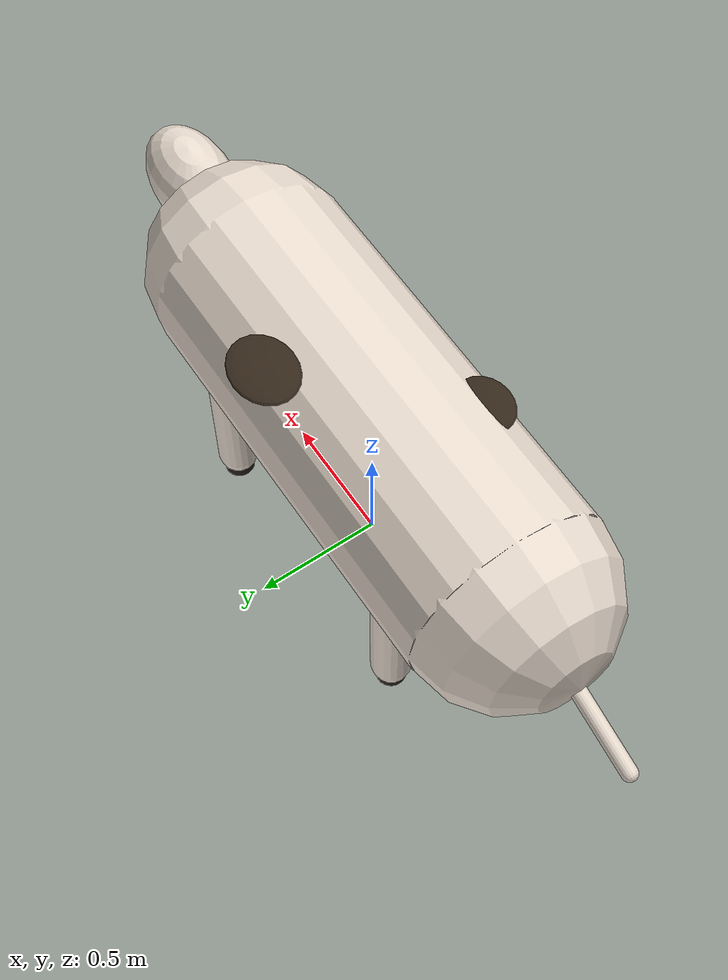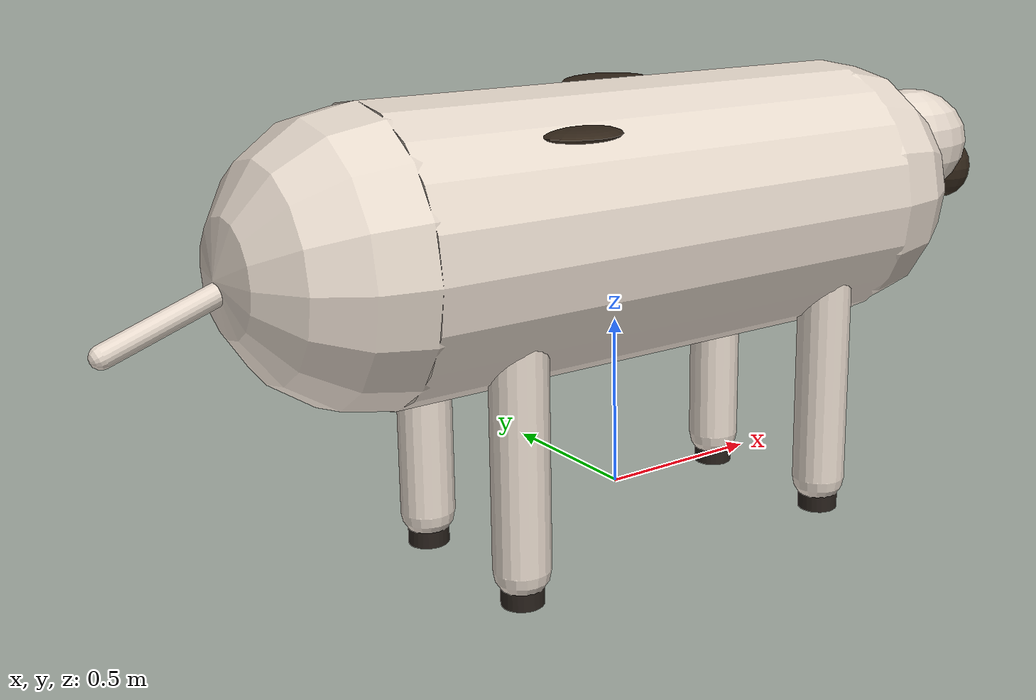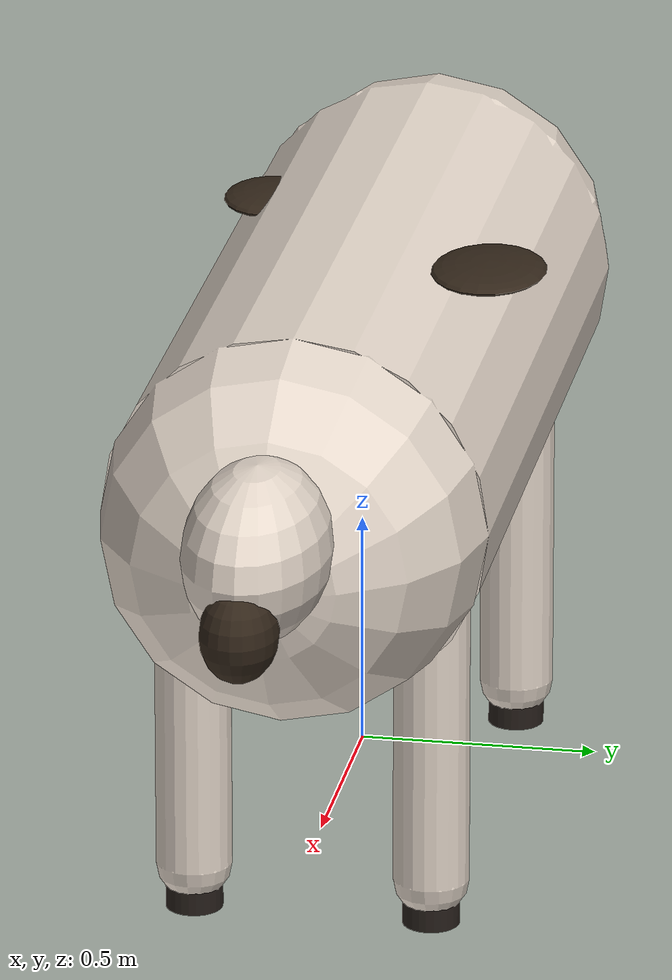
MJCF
<mujoco>
  <!-- Cow (primitive approximation) -->
  <asset>
    <material name="cow_body" rgba="0.9 0.85 0.8 1"/>
    <material name="cow_spots" rgba="0.2 0.15 0.1 1"/>
    <material name="cow_hooves" rgba="0.15 0.12 0.1 1"/>
  </asset>

  <worldbody>
    <body name="cow_body" pos="0 0 0.8">
      <!-- Main body -->
      <geom name="torso" type="capsule" size="0.4 0.8" euler="0 90 0" pos="0 0 0" material="cow_body"/>

      <!-- Head -->
      <geom name="head" type="ellipsoid" size="0.25 0.15 0.18" pos="1.2 0 0.1" material="cow_body"/>
      <geom name="snout" type="ellipsoid" size="0.1 0.08 0.1" pos="1.4 0 0" material="cow_spots"/>

      <!-- Spots -->
      <geom name="spot1" type="ellipsoid" size="0.15 0.12 0.02" pos="0.2 0.3 0.35" material="cow_spots"/>
      <geom name="spot2" type="ellipsoid" size="0.12 0.1 0.02" pos="-0.3 -0.25 0.3" material="cow_spots"/>

      <!-- Legs -->
      <geom name="leg_fl" type="capsule" size="0.08 0.35" pos="0.6 0.25 -0.5" material="cow_body"/>
      <geom name="leg_fr" type="capsule" size="0.08 0.35" pos="0.6 -0.25 -0.5" material="cow_body"/>
      <geom name="leg_bl" type="capsule" size="0.08 0.35" pos="-0.5 0.25 -0.5" material="cow_body"/>
      <geom name="leg_br" type="capsule" size="0.08 0.35" pos="-0.5 -0.25 -0.5" material="cow_body"/>

      <!-- Hooves -->
      <geom name="hoof_fl" type="cylinder" size="0.06 0.05" pos="0.6 0.25 -0.9" material="cow_hooves"/>
      <geom name="hoof_fr" type="cylinder" size="0.06 0.05" pos="0.6 -0.25 -0.9" material="cow_hooves"/>
      <geom name="hoof_bl" type="cylinder" size="0.06 0.05" pos="-0.5 0.25 -0.9" material="cow_hooves"/>
      <geom name="hoof_br" type="cylinder" size="0.06 0.05" pos="-0.5 -0.25 -0.9" material="cow_hooves"/>

      <!-- Tail -->
      <geom name="tail" type="capsule" size="0.03 0.4" pos="-1.1 0 0" euler="0 70 0" material="cow_body"/>
    </body>
  </worldbody>
</mujoco>
